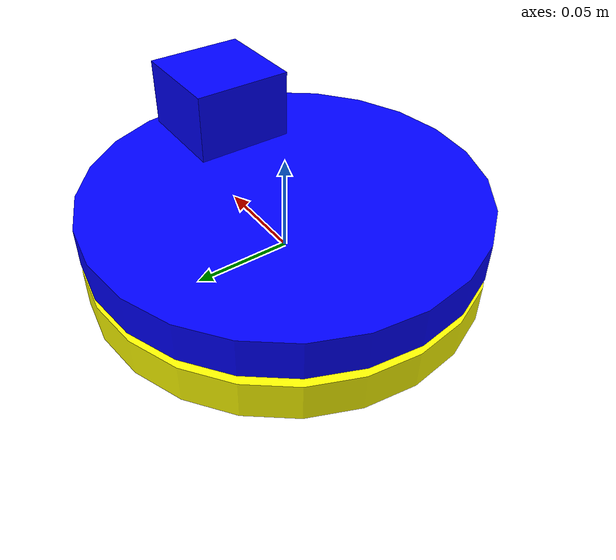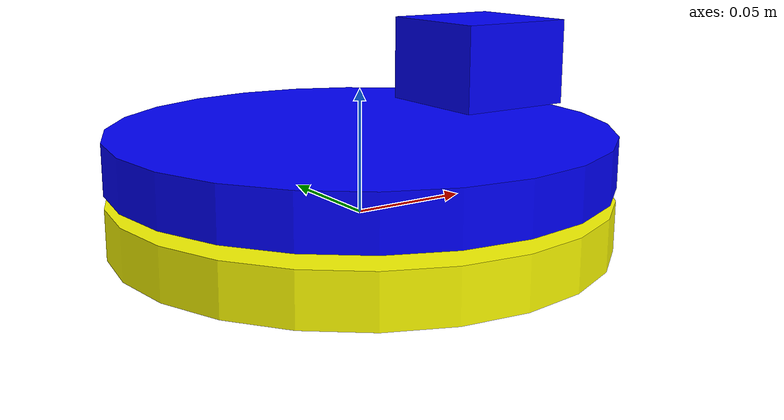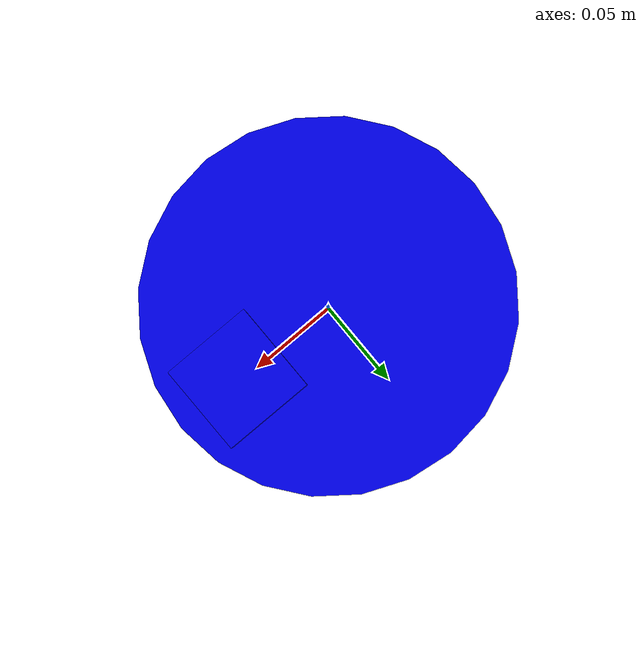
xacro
<?xml version="1.0"?>

<robot xmlns:xacro="http://www.ros.org/wiki/xacro"
 	     xmlns:sensor="http://playerstage.sourceforge.net/gazebo/xmlschema/#sensor"
    	 xmlns:controller="http://playerstage.sourceforge.net/gazebo/xmlschema/#controller"
       xmlns:interface="http://playerstage.sourceforge.net/gazebo/xmlschema/#interface"
	     name="ball_shooter">
<!--***************************Pluguins***************************-->
<gazebo>
    <plugin name="gazebo_ros_control" filename="libgazebo_ros_control.so">
        <robotNamespace>/ball_shooter</robotNamespace>
    </plugin>
</gazebo>
<gazebo>
    <plugin name="p3d_base_controller" filename="libgazebo_ros_p3d.so">
      <robotNamespace>/ball_shooter</robotNamespace>
        <alwaysOn>true</alwaysOn>
        <updateRate>50.0</updateRate>
        <bodyName>base_link</bodyName>
        <topicName>odom</topicName>
        <gaussianNoise>0.01</gaussianNoise>
        <frameName>world</frameName>
        <xyzOffsets>0 0 0</xyzOffsets>
        <rpyOffsets>0 0 0</rpyOffsets>
    </plugin>
</gazebo>
<!--***************************Pluguins***************************-->

<!--***************************Variables***************************-->
<xacro:property name="base_link_length" value="0.02" />
<xacro:property name="base_link_radius" value="0.1" />

<xacro:property name="pan_link_length" value="0.02" />
<xacro:property name="pan_link_radius" value="0.1" />
<xacro:property name="camera_link_height" value="0.2" />
<xacro:property name="camera_link_width" value="0.2" />
<xacro:property name="camera_link_hegth" value="0.01" />

<xacro:property name="tilt_link_length" value="0.4" />
<xacro:property name="tilt_link_radius" value="0.04" />
<xacro:property name="ball_suport_height" value="0.035" />
<xacro:property name="ball_suport_width" value="0.05" />

<!--***************************Variables***************************-->

<!--***************************Links***************************-->

<!-- base_link -->
<link name="base_link">
  <visual>
    <geometry>
      <cylinder length="${base_link_length}" radius="${base_link_radius}"/>
    </geometry>
    <origin rpy="0 0 0" xyz="0 0 0"/>
    <material name="yellow">
      <color rgba="1 1 0 1"/>
    </material>
  </visual>
  <collision>
    <geometry>
      <cylinder length="${base_link_length}" radius="${base_link_radius}"/>
    </geometry>
    <origin rpy="0 0 0" xyz="0 0 0"/>
  </collision>
  <inertial>
    <mass value="0.1"/>
    <inertia ixx="0.0" ixy="0.0" ixz="0.0" iyy="0.0" iyz="0.0" izz="0.0"/>
  </inertial>
</link>
<!-- pan_link -->
<link name="pan_link">
  <visual>
    <geometry>
      <cylinder length="${pan_link_length}" radius="${pan_link_radius}"/>
    </geometry>
    <origin rpy="0 0 0" xyz="0 0 0"/>
    <material name="blue">
      <color rgba="0 0 1 1"/>
    </material>
  </visual>
  <collision>
    <geometry>
      <cylinder length="${pan_link_length}" radius="${pan_link_radius}"/>
    </geometry>
    <origin rpy="0 0 0" xyz="0 0 0.0"/>
  </collision>
  <inertial>
    <mass value="1"/>
    <inertia ixx="1.0" ixy="0.0" ixz="0.0" iyy="1.0" iyz="0.0" izz="1.0"/>
  </inertial>
</link>
<!-- Support ball -->
<link name="ball_support_link">
  <origin xyz="0 0 ${ball_suport_height/2}" rpy="0 0 0" />
  <visual>
    <origin xyz="0 0 ${ball_suport_height/2}" rpy="0 0 0" />
    <geometry>
      <box size="${ball_suport_width} ${ball_suport_width} ${ball_suport_height}"/>
    </geometry>
    <material name="blue"/>
  </visual>
  <collision>
    <origin xyz="0 0 ${ball_suport_height/2}" rpy="0 0 0" />
    <geometry>
      <box size="${ball_suport_width} ${ball_suport_width} ${ball_suport_height}"/>
    </geometry>
  </collision>
  <inertial>
    <origin xyz="0 0 ${ball_suport_height/2}" rpy="0 0 0" />
    <mass value="0.1"/>
  <inertia
    ixx="0.00041666666666666675" ixy="0.0" ixz="0.0"
    iyy="0.00041666666666666675" iyz="0.0"
    izz="0.000166667"/>
    </inertial>
</link>
<!-- camera_link -->
<!-- dummy_camera_link -->
<!--***************************Links***************************-->
<!--***************************Joints***************************-->

<!-- pan_joint -->
<joint name="pan_joint" type="revolute">
  <parent link="base_link"/>
  <child link="pan_link"/>
  <origin xyz="0 0 0.025"/>
  <axis xyz="0 0 1" />
  <limit effort="300" velocity="1" lower="-3.14" upper="3.14"/>
  <dynamics damping="50" friction="1"/>
</joint>
<!-- camera_joint -->

<!-- ball_suport_link -->
<joint name="ball_support_joint" type="fixed">
  <parent link="pan_link"/>
  <child link="ball_support_link"/>
  <origin rpy="0 0 0" xyz="0.06 0 0.015"/>
  <axis xyz="0 0 0" />
</joint>
<!-- dummy_camera_joint -->
<!--***************************Joints***************************-->
<!--***************************Gazebo configuration***************************-->
<!-- base_link -->
<gazebo reference="base_link">
  <material>Gazebo/Red</material>
</gazebo>
<!-- pan_link -->
<gazebo reference="pan_link">
    <material>Gazebo/Green</material>
</gazebo>
<!-- dummy_camera_link -->
<!--***************************Gazebo configuration***************************-->
<!--***************************Transmissions***************************-->
<transmission name="pan_joint_trans">
    <type>transmission_interface/SimpleTransmission</type>
    <joint name="pan_joint">
      <hardwareInterface>hardware_interface/PositionJointInterface</hardwareInterface>
    </joint>
    <actuator name="pan_joint_motor">
      <hardwareInterface>hardware_interface/PositionJointInterface</hardwareInterface>
      <mechanicalReduction>1</mechanicalReduction>
    </actuator>
</transmission>
</robot>
<!--***************************Transmissions***************************-->
